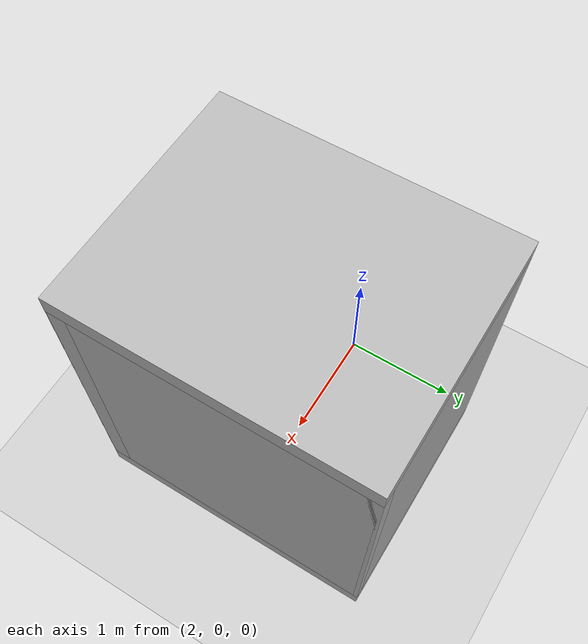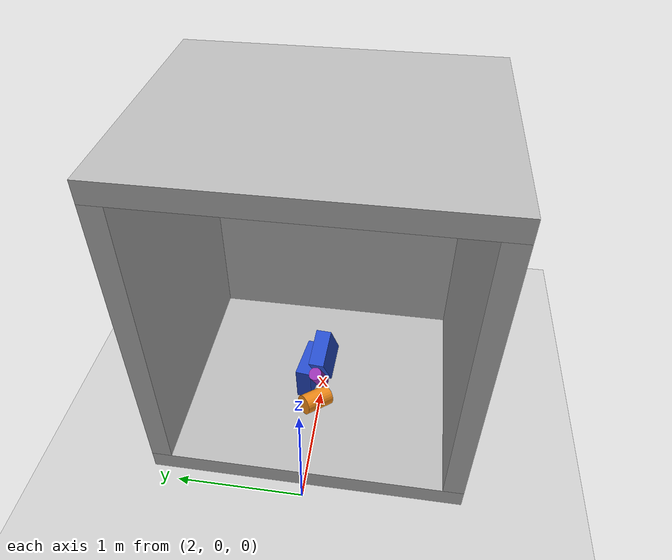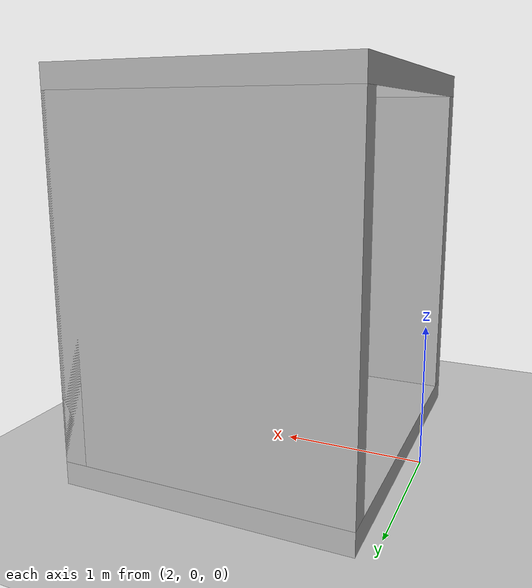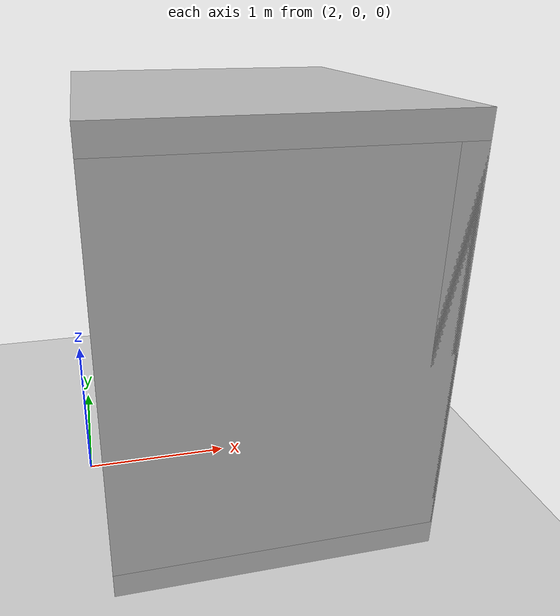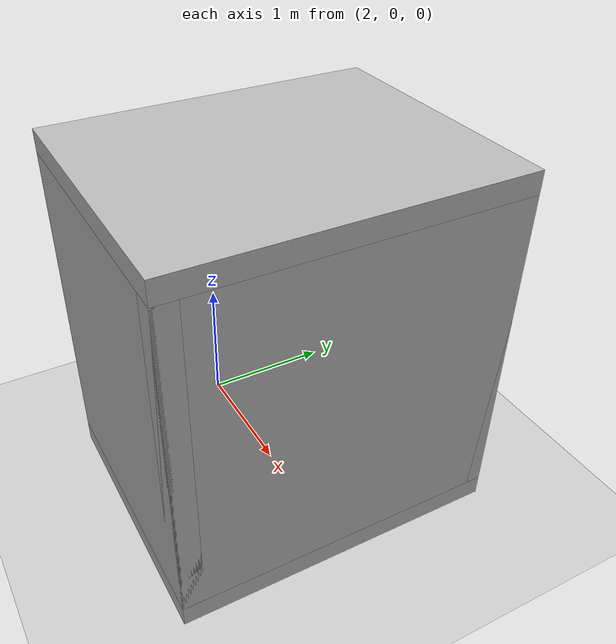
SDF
<sdf version="1.6">
 <world name="default">
  <light name="sun" type="directional">
   <pose>0 0 10 0 -0 0</pose>
   <diffuse>0.8 0.8 0.8 1</diffuse>
   <specular>0.1 0.1 0.1 1</specular>
   <attenuation>
    <range>1000</range>
    <constant>0.9</constant>
    <linear>0.01</linear>
    <quadratic>0.001</quadratic>
   </attenuation>
   <direction>-0.5 0.5 -1</direction>
  </light>
  <model name="ground_plane">
   <static>1</static>
   <link name="link">
    <collision name="collision">
     <geometry><plane><normal>0 0 1</normal><size>100 100</size></plane></geometry>
     <surface><friction><ode><mu>100</mu><mu2>50</mu2></ode></friction></surface>
    </collision>
    <visual name="visual">
     <cast_shadows>0</cast_shadows>
     <geometry><plane><normal>0 0 1</normal><size>100 100</size></plane></geometry>
     <material>
      <script><uri>file://media/materials/scripts/gazebo.material</uri><name>Gazebo/Grey</name></script>
     </material>
    </visual>
   </link>
  </model>
  <physics name="default_physics" default="0" type="ode">
   <real_time_update_rate>0</real_time_update_rate>
   <max_step_size>0.001</max_step_size>
   <real_time_factor>1</real_time_factor>
  </physics>
  <gravity>0 0 -9.8</gravity>
  <magnetic_field>6e-06 2.3e-05 -4.2e-05</magnetic_field>
  <atmosphere type="adiabatic"/>
  <scene><ambient>0.4 0.4 0.4 1</ambient><background>0.7 0.7 0.7 1</background><shadows>1</shadows></scene>
  <spherical_coordinates>
   <surface_model>EARTH_WGS84</surface_model>
   <latitude_deg>0</latitude_deg>
   <longitude_deg>0</longitude_deg>
   <elevation>0</elevation>
   <heading_deg>0</heading_deg>
  </spherical_coordinates>
  <model name="container">
   <link name="container">
    <inertial>
     <pose>0.22439 0 1.64098 0 -0 0</pose>
     <mass>205</mass>
     <inertia>
      <ixx>329.883</ixx>
      <ixy>1.59439e-15</ixy>
      <ixz>12.9249</ixz>
      <iyy>229.817</iyy>
      <iyz>1.16598e-14</iyz>
      <izz>267.609</izz>
     </inertia>
    </inertial>
    <collision name="container_back_collision">
     <pose>0.92 0 1.36 0 -0 0</pose>
     <geometry><box><size>0.16 2.45 2.4</size></box></geometry>
    </collision>
    <collision name="container_bottom_collision_1">
     <pose>0 0 0.08 0 -0 0</pose>
     <geometry><box><size>2 2.45 0.16</size></box></geometry>
    </collision>
    <collision name="container_left_collision_2">
     <pose>0 1.145 1.36 0 -0 0</pose>
     <geometry><box><size>2 0.16 2.4</size></box></geometry>
    </collision>
    <collision name="container_right_collision_3">
     <pose>0 -1.145 1.36 0 -0 0</pose>
     <geometry><box><size>2 0.16 2.4</size></box></geometry>
    </collision>
    <collision name="container_top_collision_4">
     <pose>0 0 2.64 0 -0 0</pose>
     <geometry><box><size>2 2.45 0.16</size></box></geometry>
    </collision>
    <visual name="container_back_visual">
     <pose>0.92 0 1.36 0 -0 0</pose>
     <geometry><box><size>0.16 2.45 2.4</size></box></geometry>
    </visual>
    <visual name="container_bottom_visual_1">
     <pose>0 0 0.08 0 -0 0</pose>
     <geometry><box><size>2 2.45 0.16</size></box></geometry>
    </visual>
    <visual name="container_left_visual_2">
     <pose>0 1.145 1.36 0 -0 0</pose>
     <geometry><box><size>2 0.16 2.4</size></box></geometry>
    </visual>
    <visual name="container_right_visual_3">
     <pose>0 -1.145 1.36 0 -0 0</pose>
     <geometry><box><size>2 0.16 2.4</size></box></geometry>
    </visual>
    <visual name="container_top_visual_4">
     <pose>0 0 2.64 0 -0 0</pose>
     <geometry><box><size>2 2.45 0.16</size></box></geometry>
    </visual>
   </link>
   <pose>3.10039 0.000448 -0 0 0 -0.000168</pose>
  </model>
  <model name="roblog-dhl-box-blue-simple-0-736">
   <link name="link">
    <inertial>
     <mass>0.25</mass>
     <inertia>
      <ixx>0.00218083</ixx>
      <ixy>0</ixy>
      <ixz>0</ixz>
      <iyy>0.00473308</iyy>
      <iyz>0</iyz>
      <izz>0.00321375</izz>
     </inertia>
    </inertial>
    <collision name="link_collision"><geometry><box><size>0.372 0.126 0.298</size></box></geometry></collision>
    <visual name="link_visual">
     <geometry><box><size>0.372 0.126 0.298</size></box></geometry>
     <material>
      <script><name>Gazebo/Blue</name><uri>file://media/materials/scripts/gazebo.material</uri></script>
     </material>
    </visual>
   </link>
   <pose>3.01367 0.096479 0.311007 -0.033327 4.9e-05 -0.142665</pose>
  </model>
  <model name="roblog-dhl-box-blue-simple-1-737">
   <link name="link">
    <inertial>
     <mass>0.25</mass>
     <inertia>
      <ixx>0.00218083</ixx>
      <ixy>0</ixy>
      <ixz>0</ixz>
      <iyy>0.00473308</iyy>
      <iyz>0</iyz>
      <izz>0.00321375</izz>
     </inertia>
    </inertial>
    <collision name="link_collision"><geometry><box><size>0.372 0.126 0.298</size></box></geometry></collision>
    <visual name="link_visual">
     <geometry><box><size>0.372 0.126 0.298</size></box></geometry>
     <material>
      <script><name>Gazebo/Blue</name><uri>file://media/materials/scripts/gazebo.material</uri></script>
     </material>
    </visual>
   </link>
   <pose>3.02555 -0.024472 0.501399 -0.180622 1.10802 -0.30465</pose>
  </model>
  <model name="roblog-vanish-detergent-simple-2-738">
   <link name="link">
    <inertial>
     <mass>0.08</mass>
     <inertia>
      <ixx>0.000324987</ixx>
      <ixy>0</ixy>
      <ixz>0</ixz>
      <iyy>0.000324987</iyy>
      <iyz>0</iyz>
      <izz>0.00011664</izz>
     </inertia>
    </inertial>
    <collision name="link_collision">
     <geometry><cylinder><length>0.2</length><radius>0.054</radius></cylinder></geometry>
    </collision>
    <visual name="link_visual">
     <geometry><cylinder><length>0.2</length><radius>0.054</radius></cylinder></geometry>
     <material>
      <script><name>Gazebo/PurpleGlow</name><uri>file://media/materials/scripts/gazebo.material</uri></script>
     </material>
    </visual>
    <velocity_decay><linear>0.005</linear><angular>0.005</angular></velocity_decay>
   </link>
   <pose>2.83383 -0.00616 0.428525 -0.306813 -0.373483 0.14466</pose>
  </model>
  <model name="roblog-maisels-barrel-simple-3-739">
   <link name="link">
    <inertial>
     <mass>0.54</mass>
     <inertia>
      <ixx>0.00354312</ixx>
      <ixy>0</ixy>
      <ixz>0</ixz>
      <iyy>0.00354312</iyy>
      <iyz>0</iyz>
      <izz>0.00181548</izz>
     </inertia>
    </inertial>
    <collision name="link_collision">
     <geometry><cylinder><length>0.242</length><radius>0.082</radius></cylinder></geometry>
    </collision>
    <visual name="link_visual">
     <geometry><cylinder><length>0.242</length><radius>0.082</radius></cylinder></geometry>
     <material>
      <script><name>Gazebo/Orange</name><uri>file://media/materials/scripts/gazebo.material</uri></script>
     </material>
    </visual>
    <velocity_decay><linear>0.005</linear><angular>0.005</angular></velocity_decay>
   </link>
   <pose>2.73477 0.005476 0.25806 -0.57393 -1.40411 -0.246863</pose>
  </model>
 </world>
</sdf>
